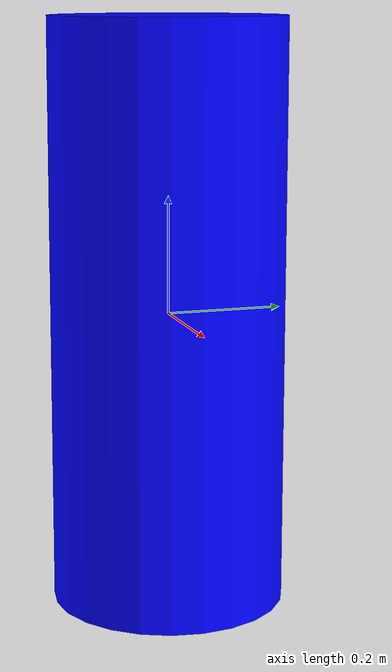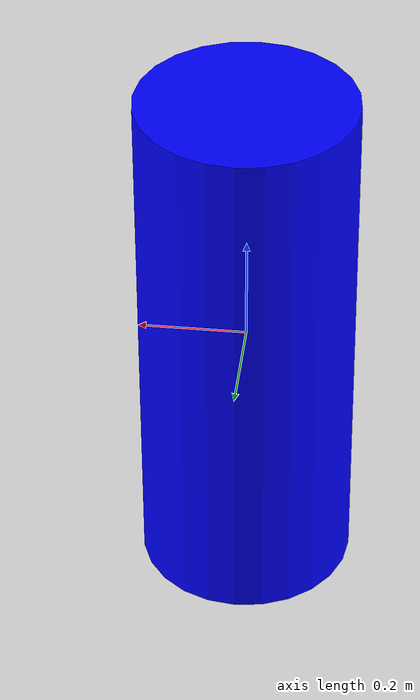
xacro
<?xml version="1.0"?>
<robot name="my_auv" xmlns:xacro="http://www.ros.org/wiki/xacro">

  <!-- Base Link -->
  <link name="base_link">
    <inertial>
      <mass value="50"/>
      <origin xyz="0 0 0"/>
      <inertia ixx="3" iyy="3" izz="3"/>
    </inertial>
    <visual>
      <geometry>
        <cylinder radius="0.2" length="1.0"/>
      </geometry>
      <material name="Blue">
        <color rgba="0 0 1 1"/>
      </material>
    </visual>
    <collision>
      <geometry>
        <cylinder radius="0.2" length="1.0"/>
      </geometry>
    </collision>
  </link>

  <!-- IMU -->
  <link name="imu_link"/>
  <joint name="imu_joint" type="fixed">
    <parent link="base_link"/>
    <child link="imu_link"/>
    <origin xyz="0 0 0"/>
  </joint>

  <!-- Correct IMU Sensor Block -->
  <gazebo reference="imu_link">
    <sensor name="imu_sensor" type="imu">
      <always_on>true</always_on>
      <update_rate>50</update_rate>
      <plugin name="imu_plugin" filename="libgazebo_ros_imu_sensor.so">
        <topicName>/my_auv/imu</topicName>
        <frameName>imu_link</frameName>
      </plugin>
    </sensor>
  </gazebo>

  <!-- Camera -->
  <link name="camera_link"/>
  <joint name="camera_joint" type="fixed">
    <parent link="base_link"/>
    <child link="camera_link"/>
    <origin xyz="0.5 0 0"/>
  </joint>

  <gazebo reference="camera_link">
    <sensor name="front_camera" type="camera">
      <update_rate>30</update_rate>
      <camera>
        <horizontal_fov>1.0</horizontal_fov>
        <image>
          <width>640</width>
          <height>480</height>
          <format>R8G8B8</format>
        </image>
      </camera>
      <plugin name="camera_plugin" filename="libgazebo_ros_camera.so">
        <cameraName>front_camera</cameraName>
        <imageTopicName>/my_auv/camera/image_raw</imageTopicName>
        <cameraInfoTopicName>/my_auv/camera/camera_info</cameraInfoTopicName>
        <frameName>camera_link</frameName>
      </plugin>
    </sensor>
  </gazebo>

</robot>
